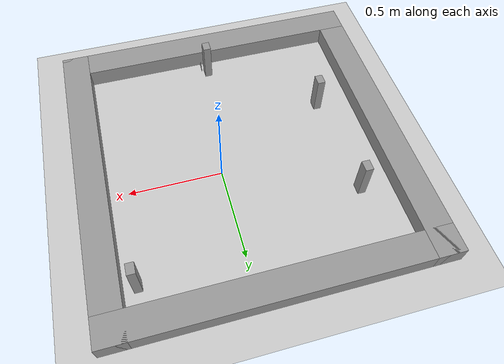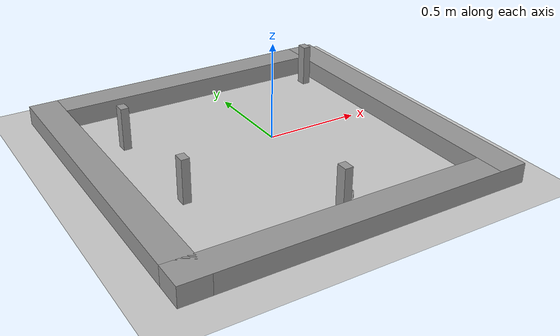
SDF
<sdf version="1.7">
 <world name="default">
  <light name="sun" type="directional">
   <pose>0 0 10 0 -0 0</pose>
   <diffuse>0.8 0.8 0.8 1</diffuse>
   <specular>0.2 0.2 0.2 1</specular>
   <attenuation>
    <range>1000</range>
    <constant>0.9</constant>
    <linear>0.01</linear>
    <quadratic>0.001</quadratic>
   </attenuation>
   <direction>-0.5 0.1 -0.9</direction>
   <spot><inner_angle>0</inner_angle><outer_angle>0</outer_angle><falloff>0</falloff></spot>
  </light>
  <model name="ground_plane">
   <static>1</static>
   <link name="link">
    <collision name="collision">
     <geometry><plane><normal>0 0 1</normal><size>100 100</size></plane></geometry>
     <surface>
      <contact><collide_bitmask>65535</collide_bitmask></contact>
      <friction><ode><mu>100</mu><mu2>50</mu2></ode></friction>
     </surface>
    </collision>
    <visual name="visual">
     <cast_shadows>0</cast_shadows>
     <geometry><plane><normal>0 0 1</normal><size>100 100</size></plane></geometry>
     <material>
      <script><uri>file://media/materials/scripts/gazebo.material</uri><name>Gazebo/Grey</name></script>
     </material>
    </visual>
   </link>
  </model>
  <gravity>0 0 -9.8</gravity>
  <magnetic_field>6e-06 2.3e-05 -4.2e-05</magnetic_field>
  <atmosphere type="adiabatic"/>
  <physics type="ode">
   <max_step_size>0.001</max_step_size>
   <real_time_factor>1</real_time_factor>
   <real_time_update_rate>1000</real_time_update_rate>
  </physics>
  <scene><ambient>0.4 0.4 0.4 1</ambient><background>0.7 0.7 0.7 1</background><shadows>1</shadows></scene>
  <audio><device>default</device></audio>
  <spherical_coordinates>
   <surface_model>EARTH_WGS84</surface_model>
   <latitude_deg>0</latitude_deg>
   <longitude_deg>0</longitude_deg>
   <elevation>0</elevation>
   <heading_deg>0</heading_deg>
  </spherical_coordinates>
  <model name="turtlebot_test_arena1">
   <pose>-0.126097 1.98994 0 0 -0 0</pose>
   <link name="Wall_0">
    <collision name="Wall_0_Collision">
     <geometry><box><size>1.75 0.15 0.1</size></box></geometry>
     <pose>0 0 0.05 0 -0 0</pose>
    </collision>
    <visual name="Wall_0_Visual">
     <pose>0 0 0.05 0 -0 0</pose>
     <geometry><box><size>1.75 0.15 0.1</size></box></geometry>
     <material>
      <script><uri>file://media/materials/scripts/gazebo.material</uri><name>Gazebo/Grey</name></script>
      <ambient>1 1 1 1</ambient>
     </material>
     <meta><layer>0</layer></meta>
    </visual>
    <pose>-0 -1.2875 0 0 -0 0</pose>
   </link>
   <link name="Wall_1">
    <collision name="Wall_1_Collision">
     <geometry><box><size>1.75 0.15 0.1</size></box></geometry>
     <pose>0 0 0.05 0 -0 0</pose>
    </collision>
    <visual name="Wall_1_Visual">
     <pose>0 0 0.05 0 -0 0</pose>
     <geometry><box><size>1.75 0.15 0.1</size></box></geometry>
     <material>
      <script><uri>file://media/materials/scripts/gazebo.material</uri><name>Gazebo/Grey</name></script>
      <ambient>1 1 1 1</ambient>
     </material>
     <meta><layer>0</layer></meta>
    </visual>
    <pose>0.8 -2.0875 0 0 -0 -1.5708</pose>
   </link>
   <link name="Wall_2">
    <collision name="Wall_2_Collision">
     <geometry><box><size>1.75 0.15 0.1</size></box></geometry>
     <pose>0 0 0.05 0 -0 0</pose>
    </collision>
    <visual name="Wall_2_Visual">
     <pose>0 0 0.05 0 -0 0</pose>
     <geometry><box><size>1.75 0.15 0.1</size></box></geometry>
     <material>
      <script><uri>file://media/materials/scripts/gazebo.material</uri><name>Gazebo/Grey</name></script>
      <ambient>1 1 1 1</ambient>
     </material>
     <meta><layer>0</layer></meta>
    </visual>
    <pose>-0 -2.8875 0 0 -0 3.14159</pose>
   </link>
   <link name="Wall_3">
    <collision name="Wall_3_Collision">
     <geometry><box><size>1.75 0.15 0.1</size></box></geometry>
     <pose>0 0 0.05 0 -0 0</pose>
    </collision>
    <visual name="Wall_3_Visual">
     <pose>0 0 0.05 0 -0 0</pose>
     <geometry><box><size>1.75 0.15 0.1</size></box></geometry>
     <material>
      <script><uri>file://media/materials/scripts/gazebo.material</uri><name>Gazebo/Grey</name></script>
      <ambient>1 1 1 1</ambient>
     </material>
     <meta><layer>0</layer></meta>
    </visual>
    <pose>-0.8 -2.0875 0 0 -0 1.5708</pose>
   </link>
   <static>1</static>
  </model>
  <model name="unit_box">
   <pose>-0.678559 0.280371 0.111107 -1.5e-05 6e-06 6.4e-05</pose>
   <link name="link">
    <inertial>
     <mass>1</mass>
     <inertia>
      <ixx>0.166667</ixx>
      <ixy>0</ixy>
      <ixz>0</ixz>
      <iyy>0.166667</iyy>
      <iyz>0</iyz>
      <izz>0.166667</izz>
     </inertia>
    </inertial>
    <collision name="collision">
     <geometry><box><size>0.041423 0.056652 0.222212</size></box></geometry>
    </collision>
    <visual name="visual">
     <geometry><box><size>0.041423 0.056652 0.222212</size></box></geometry>
     <material>
      <script><name>Gazebo/Grey</name><uri>file://media/materials/scripts/gazebo.material</uri></script>
     </material>
    </visual>
   </link>
  </model>
  <model name="unit_box_clone">
   <pose>-0.6504 -0.321033 0.111106 -2e-06 -4e-06 1e-06</pose>
   <link name="link">
    <inertial>
     <mass>1</mass>
     <inertia>
      <ixx>0.166667</ixx>
      <ixy>0</ixy>
      <ixz>0</ixz>
      <iyy>0.166667</iyy>
      <iyz>0</iyz>
      <izz>0.166667</izz>
     </inertia>
    </inertial>
    <collision name="collision">
     <geometry><box><size>0.041423 0.056652 0.222212</size></box></geometry>
    </collision>
    <visual name="visual">
     <geometry><box><size>0.041423 0.056652 0.222212</size></box></geometry>
     <material>
      <script><name>Gazebo/Grey</name><uri>file://media/materials/scripts/gazebo.material</uri></script>
     </material>
    </visual>
   </link>
  </model>
  <model name="unit_box_clone_0">
   <pose>0.529698 0.508208 0.111109 -7.6e-05 2.4e-05 -5.6e-05</pose>
   <link name="link">
    <inertial>
     <mass>1</mass>
     <inertia>
      <ixx>0.166667</ixx>
      <ixy>0</ixy>
      <ixz>0</ixz>
      <iyy>0.166667</iyy>
      <iyz>0</iyz>
      <izz>0.166667</izz>
     </inertia>
    </inertial>
    <collision name="collision">
     <geometry><box><size>0.041423 0.056652 0.222212</size></box></geometry>
    </collision>
    <visual name="visual">
     <geometry><box><size>0.041423 0.056652 0.222212</size></box></geometry>
     <material>
      <script><name>Gazebo/Grey</name><uri>file://media/materials/scripts/gazebo.material</uri></script>
     </material>
    </visual>
   </link>
  </model>
  <model name="unit_box_clone_1">
   <pose>-0.095651 -0.741593 0.111107 -2e-06 6.2e-05 0.001455</pose>
   <link name="link">
    <inertial>
     <mass>1</mass>
     <inertia>
      <ixx>0.166667</ixx>
      <ixy>0</ixy>
      <ixz>0</ixz>
      <iyy>0.166667</iyy>
      <iyz>0</iyz>
      <izz>0.166667</izz>
     </inertia>
    </inertial>
    <collision name="collision">
     <geometry><box><size>0.041423 0.056652 0.222212</size></box></geometry>
    </collision>
    <visual name="visual">
     <geometry><box><size>0.041423 0.056652 0.222212</size></box></geometry>
     <material>
      <script><name>Gazebo/Grey</name><uri>file://media/materials/scripts/gazebo.material</uri></script>
     </material>
    </visual>
   </link>
  </model>
  <model name="aruco_marker_1">
   <static>1</static>
   <link name="link">
    <gravity>0</gravity>
    <collision name="collision"><geometry><box><size>0.04 0.04 0.001</size></box></geometry></collision>
    <visual name="visual">
     <pose>0 0 0 3.14159 1.57079 3.14159</pose>
     <geometry><box><size>0.04 0.04 0.001</size></box></geometry>
     <material>
      <script>
       <uri>model:/home/monisha/simulation_ws/src/my_simulation/models/aruco_marker_1/materials/scripts</uri>
       <name>MarkerMaterial</name>
      </script>
     </material>
    </visual>
   </link>
   <pose>-0.054807 -0.736168 0.071068 0 -0 0</pose>
  </model>
 </world>
</sdf>
